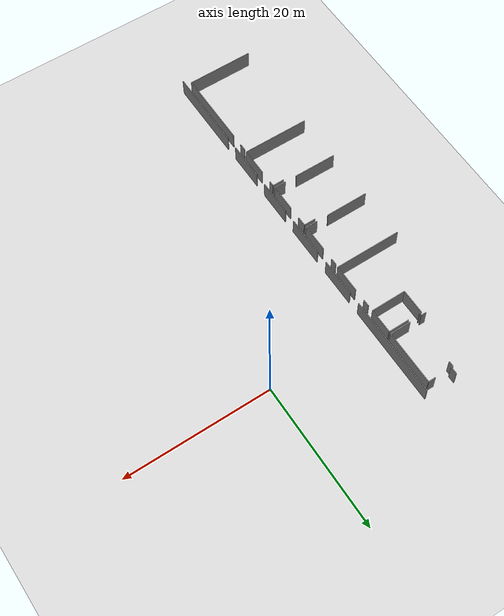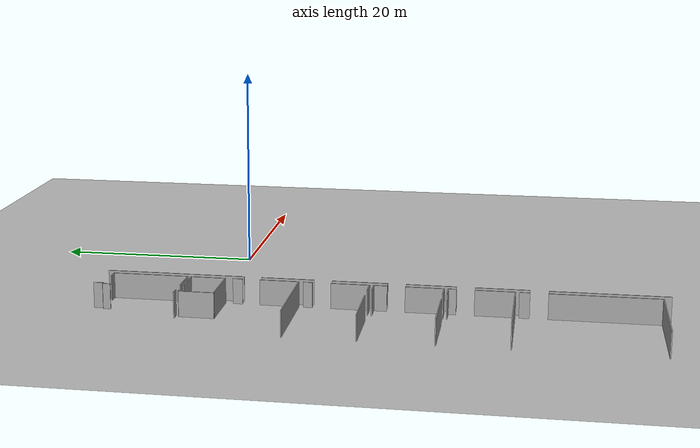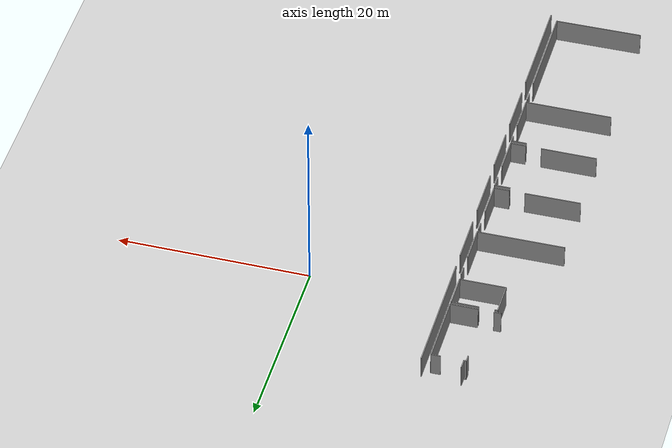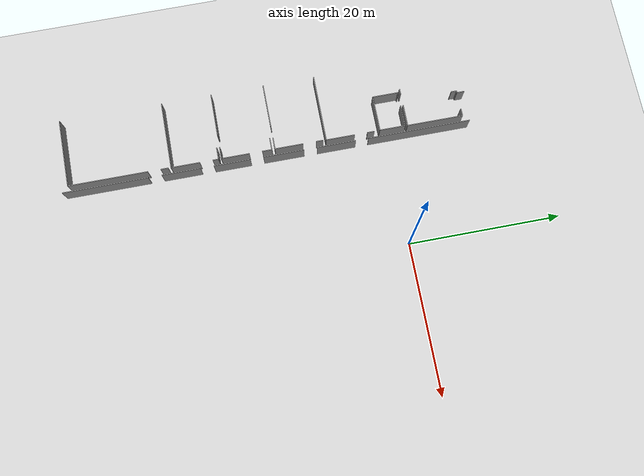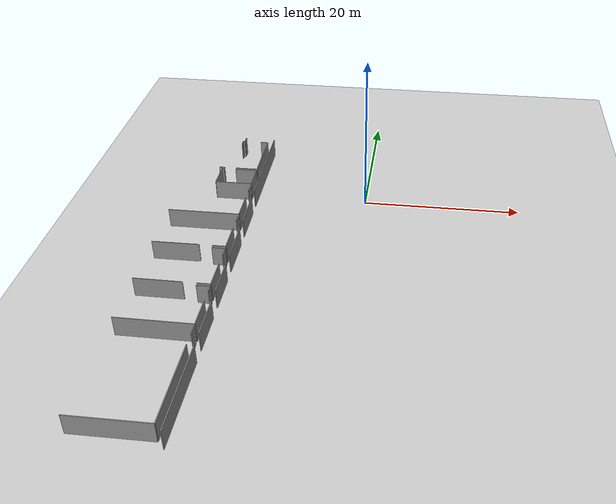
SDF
<sdf version="1.6">
 <world name="default">
  <model name="ground_plane">
   <static>1</static>
   <link name="link">
    <collision name="collision">
     <geometry><plane><normal>0 0 1</normal><size>100 100</size></plane></geometry>
     <surface><friction><ode><mu>100</mu><mu2>50</mu2></ode></friction></surface>
    </collision>
    <visual name="visual">
     <cast_shadows>0</cast_shadows>
     <geometry><plane><normal>0 0 1</normal><size>100 100</size></plane></geometry>
     <material>
      <script><uri>file://media/materials/scripts/gazebo.material</uri><name>Gazebo/Grey</name></script>
     </material>
    </visual>
   </link>
  </model>
  <model name="0510035737_A_40_1_105">
   <static>1</static>
   <link name="Wall_169">
    <collision name="Wall_169_Collision">
     <geometry><box><size>0.720409265673 0.1 2.5</size></box></geometry>
     <pose>0.360204632837 0 1.25 0 0 0</pose>
    </collision>
    <visual name="Wall_169_Visual">
     <pose>0.360204632837 0 1.25 0 0 0</pose>
     <geometry><box><size>0.720409265673 0.1 2.5</size></box></geometry>
     <material>
      <script><uri>file://media/materials/scripts/gazebo.material</uri><name>Gazebo/Grey</name></script>
      <ambient>1 1 1 1</ambient>
     </material>
    </visual>
    <pose>61.5563534683 -36.4500651393 0 0 0 1.57079632679</pose>
   </link>
   <link name="Wall_170">
    <collision name="Wall_170_Collision">
     <geometry><box><size>0.251406056369 0.1 2.5</size></box></geometry>
     <pose>0.125703028185 0 1.25 0 0 0</pose>
    </collision>
    <visual name="Wall_170_Visual">
     <pose>0.125703028185 0 1.25 0 0 0</pose>
     <geometry><box><size>0.251406056369 0.1 2.5</size></box></geometry>
     <material>
      <script><uri>file://media/materials/scripts/gazebo.material</uri><name>Gazebo/Grey</name></script>
      <ambient>1 1 1 1</ambient>
     </material>
    </visual>
    <pose>61.5563534683 -35.7296558737 0 0 0 0.0</pose>
   </link>
   <link name="Wall_171">
    <collision name="Wall_171_Collision">
     <geometry><box><size>0.98350862699 0.1 2.5</size></box></geometry>
     <pose>0.491754313495 0 1.25 0 0 0</pose>
    </collision>
    <visual name="Wall_171_Visual">
     <pose>0.491754313495 0 1.25 0 0 0</pose>
     <geometry><box><size>0.98350862699 0.1 2.5</size></box></geometry>
     <material>
      <script><uri>file://media/materials/scripts/gazebo.material</uri><name>Gazebo/Grey</name></script>
      <ambient>1 1 1 1</ambient>
     </material>
    </visual>
    <pose>61.8077595246 -35.7296558737 0 0 0 1.57079632679</pose>
   </link>
   <link name="Wall_173">
    <collision name="Wall_173_Collision">
     <geometry><box><size>0.980458199612 0.1 2.5</size></box></geometry>
     <pose>0.490229099806 0 1.25 0 0 0</pose>
    </collision>
    <visual name="Wall_173_Visual">
     <pose>0.490229099806 0 1.25 0 0 0</pose>
     <geometry><box><size>0.980458199612 0.1 2.5</size></box></geometry>
     <material>
      <script><uri>file://media/materials/scripts/gazebo.material</uri><name>Gazebo/Grey</name></script>
      <ambient>1 1 1 1</ambient>
     </material>
    </visual>
    <pose>64.1235423088 -35.7255886372 0 0 0 0.0</pose>
   </link>
   <link name="Wall_174">
    <collision name="Wall_174_Collision">
     <geometry><box><size>7.37949223094 0.1 2.5</size></box></geometry>
     <pose>3.68974611547 0 1.25 0 0 0</pose>
    </collision>
    <visual name="Wall_174_Visual">
     <pose>3.68974611547 0 1.25 0 0 0</pose>
     <geometry><box><size>7.37949223094 0.1 2.5</size></box></geometry>
     <material>
      <script><uri>file://media/materials/scripts/gazebo.material</uri><name>Gazebo/Grey</name></script>
      <ambient>1 1 1 1</ambient>
     </material>
    </visual>
    <pose>65.1040005084 -35.7255886372 0 0 0 -1.57079632679</pose>
   </link>
   <link name="Wall_175">
    <collision name="Wall_175_Collision">
     <geometry><box><size>2.85596263226 0.1 2.5</size></box></geometry>
     <pose>1.42798131613 0 1.25 0 0 0</pose>
    </collision>
    <visual name="Wall_175_Visual">
     <pose>1.42798131613 0 1.25 0 0 0</pose>
     <geometry><box><size>2.85596263226 0.1 2.5</size></box></geometry>
     <material>
      <script><uri>file://media/materials/scripts/gazebo.material</uri><name>Gazebo/Grey</name></script>
      <ambient>1 1 1 1</ambient>
     </material>
    </visual>
    <pose>65.1040005084 -43.1050808681 0 0 0 3.14159265359</pose>
   </link>
   <link name="Wall_176">
    <collision name="Wall_176_Collision">
     <geometry><box><size>0.751930348575 0.1 2.5</size></box></geometry>
     <pose>0.375965174287 0 1.25 0 0 0</pose>
    </collision>
    <visual name="Wall_176_Visual">
     <pose>0.375965174287 0 1.25 0 0 0</pose>
     <geometry><box><size>0.751930348575 0.1 2.5</size></box></geometry>
     <material>
      <script><uri>file://media/materials/scripts/gazebo.material</uri><name>Gazebo/Grey</name></script>
      <ambient>1 1 1 1</ambient>
     </material>
    </visual>
    <pose>60.6536811668 -43.1050808681 0 0 0 3.14159265359</pose>
   </link>
   <link name="Wall_188">
    <collision name="Wall_188_Collision">
     <geometry><box><size>3.38495757999 0.1 2.5</size></box></geometry>
     <pose>1.69247879 0 1.25 0 0 0</pose>
    </collision>
    <visual name="Wall_188_Visual">
     <pose>1.69247879 0 1.25 0 0 0</pose>
     <geometry><box><size>3.38495757999 0.1 2.5</size></box></geometry>
     <material>
      <script><uri>file://media/materials/scripts/gazebo.material</uri><name>Gazebo/Grey</name></script>
      <ambient>1 1 1 1</ambient>
     </material>
    </visual>
    <pose>60.3544850815 -46.8225350323 0 0 0 1.57079632679</pose>
   </link>
   <link name="Wall_189">
    <collision name="Wall_189_Collision">
     <geometry><box><size>0.282164532427 0.1 2.5</size></box></geometry>
     <pose>0.141082266213 0 1.25 0 0 0</pose>
    </collision>
    <visual name="Wall_189_Visual">
     <pose>0.141082266213 0 1.25 0 0 0</pose>
     <geometry><box><size>0.282164532427 0.1 2.5</size></box></geometry>
     <material>
      <script><uri>file://media/materials/scripts/gazebo.material</uri><name>Gazebo/Grey</name></script>
      <ambient>1 1 1 1</ambient>
     </material>
    </visual>
    <pose>60.3544850815 -43.4375774523 0 0 0 0.0</pose>
   </link>
   <link name="Wall_190">
    <collision name="Wall_190_Collision">
     <geometry><box><size>2.83842267484 0.1 2.5</size></box></geometry>
     <pose>1.41921133742 0 1.25 0 0 0</pose>
    </collision>
    <visual name="Wall_190_Visual">
     <pose>1.41921133742 0 1.25 0 0 0</pose>
     <geometry><box><size>2.83842267484 0.1 2.5</size></box></geometry>
     <material>
      <script><uri>file://media/materials/scripts/gazebo.material</uri><name>Gazebo/Grey</name></script>
      <ambient>1 1 1 1</ambient>
     </material>
    </visual>
    <pose>62.2338025484 -43.4375774523 0 0 0 0.0</pose>
   </link>
   <link name="Wall_191">
    <collision name="Wall_191_Collision">
     <geometry><box><size>3.36716342029 0.1 2.5</size></box></geometry>
     <pose>1.68358171015 0 1.25 0 0 0</pose>
    </collision>
    <visual name="Wall_191_Visual">
     <pose>1.68358171015 0 1.25 0 0 0</pose>
     <geometry><box><size>3.36716342029 0.1 2.5</size></box></geometry>
     <material>
      <script><uri>file://media/materials/scripts/gazebo.material</uri><name>Gazebo/Grey</name></script>
      <ambient>1 1 1 1</ambient>
     </material>
    </visual>
    <pose>65.0722252232 -43.4375774523 0 0 0 -1.57079632679</pose>
   </link>
   <link name="Wall_192">
    <collision name="Wall_192_Collision">
     <geometry><box><size>4.7177736992 0.1 2.5</size></box></geometry>
     <pose>2.3588868496 0 1.25 0 0 0</pose>
    </collision>
    <visual name="Wall_192_Visual">
     <pose>2.3588868496 0 1.25 0 0 0</pose>
     <geometry><box><size>4.7177736992 0.1 2.5</size></box></geometry>
     <material>
      <script><uri>file://media/materials/scripts/gazebo.material</uri><name>Gazebo/Grey</name></script>
      <ambient>1 1 1 1</ambient>
     </material>
    </visual>
    <pose>65.0722252232 -46.8047408725 0 0 0 -3.13782091653</pose>
   </link>
   <link name="Wall_213">
    <collision name="Wall_213_Collision">
     <geometry><box><size>11.2009151282 0.1 2.5</size></box></geometry>
     <pose>5.60045756411 0 1.25 0 0 0</pose>
    </collision>
    <visual name="Wall_213_Visual">
     <pose>5.60045756411 0 1.25 0 0 0</pose>
     <geometry><box><size>11.2009151282 0.1 2.5</size></box></geometry>
     <material>
      <script><uri>file://media/materials/scripts/gazebo.material</uri><name>Gazebo/Grey</name></script>
      <ambient>1 1 1 1</ambient>
     </material>
    </visual>
    <pose>65.8889771536 -88.7295605478 0 0 0 1.57079632679</pose>
   </link>
   <link name="Wall_214">
    <collision name="Wall_214_Collision">
     <geometry><box><size>5.085570843 0.1 2.5</size></box></geometry>
     <pose>2.5427854215 0 1.25 0 0 0</pose>
    </collision>
    <visual name="Wall_214_Visual">
     <pose>2.5427854215 0 1.25 0 0 0</pose>
     <geometry><box><size>5.085570843 0.1 2.5</size></box></geometry>
     <material>
      <script><uri>file://media/materials/scripts/gazebo.material</uri><name>Gazebo/Grey</name></script>
      <ambient>1 1 1 1</ambient>
     </material>
    </visual>
    <pose>65.8889771536 -75.7848177687 0 0 0 1.57079632679</pose>
   </link>
   <link name="Wall_215">
    <collision name="Wall_215_Collision">
     <geometry><box><size>4.80264370373 0.1 2.5</size></box></geometry>
     <pose>2.40132185186 0 1.25 0 0 0</pose>
    </collision>
    <visual name="Wall_215_Visual">
     <pose>2.40132185186 0 1.25 0 0 0</pose>
     <geometry><box><size>4.80264370373 0.1 2.5</size></box></geometry>
     <material>
      <script><uri>file://media/materials/scripts/gazebo.material</uri><name>Gazebo/Grey</name></script>
      <ambient>1 1 1 1</ambient>
     </material>
    </visual>
    <pose>65.8889771536 -68.9627911411 0 0 0 1.57079632679</pose>
   </link>
   <link name="Wall_216">
    <collision name="Wall_216_Collision">
     <geometry><box><size>5.36112611611 0.1 2.5</size></box></geometry>
     <pose>2.68056305805 0 1.25 0 0 0</pose>
    </collision>
    <visual name="Wall_216_Visual">
     <pose>2.68056305805 0 1.25 0 0 0</pose>
     <geometry><box><size>5.36112611611 0.1 2.5</size></box></geometry>
     <material>
      <script><uri>file://media/materials/scripts/gazebo.material</uri><name>Gazebo/Grey</name></script>
      <ambient>1 1 1 1</ambient>
     </material>
    </visual>
    <pose>65.8889771536 -62.4389437895 0 0 0 1.57079632679</pose>
   </link>
   <link name="Wall_217">
    <collision name="Wall_217_Collision">
     <geometry><box><size>5.12243017381 0.1 2.5</size></box></geometry>
     <pose>2.56121508691 0 1.25 0 0 0</pose>
    </collision>
    <visual name="Wall_217_Visual">
     <pose>2.56121508691 0 1.25 0 0 0</pose>
     <geometry><box><size>5.12243017381 0.1 2.5</size></box></geometry>
     <material>
      <script><uri>file://media/materials/scripts/gazebo.material</uri><name>Gazebo/Grey</name></script>
      <ambient>1 1 1 1</ambient>
     </material>
    </visual>
    <pose>65.8889771536 -55.3243303359 0 0 0 1.57079632679</pose>
   </link>
   <link name="Wall_218">
    <collision name="Wall_218_Collision">
     <geometry><box><size>13.5777064599 0.1 2.5</size></box></geometry>
     <pose>6.78885322996 0 1.25 0 0 0</pose>
    </collision>
    <visual name="Wall_218_Visual">
     <pose>6.78885322996 0 1.25 0 0 0</pose>
     <geometry><box><size>13.5777064599 0.1 2.5</size></box></geometry>
     <material>
      <script><uri>file://media/materials/scripts/gazebo.material</uri><name>Gazebo/Grey</name></script>
      <ambient>1 1 1 1</ambient>
     </material>
    </visual>
    <pose>65.8889771536 -48.5137428108 0 0 0 1.57079632679</pose>
   </link>
   <link name="Wall_231">
    <collision name="Wall_231_Collision">
     <geometry><box><size>0.948682914429 0.1 2.5</size></box></geometry>
     <pose>0.474341457215 0 1.25 0 0 0</pose>
    </collision>
    <visual name="Wall_231_Visual">
     <pose>0.474341457215 0 1.25 0 0 0</pose>
     <geometry><box><size>0.948682914429 0.1 2.5</size></box></geometry>
     <material>
      <script><uri>file://media/materials/scripts/gazebo.material</uri><name>Gazebo/Grey</name></script>
      <ambient>1 1 1 1</ambient>
     </material>
    </visual>
    <pose>65.1032379016 -47.5543834006 0 0 0 -1.57079632679</pose>
   </link>
   <link name="Wall_232">
    <collision name="Wall_232_Collision">
     <geometry><box><size>3.78227574592 0.1 2.5</size></box></geometry>
     <pose>1.89113787296 0 1.25 0 0 0</pose>
    </collision>
    <visual name="Wall_232_Visual">
     <pose>1.89113787296 0 1.25 0 0 0</pose>
     <geometry><box><size>3.78227574592 0.1 2.5</size></box></geometry>
     <material>
      <script><uri>file://media/materials/scripts/gazebo.material</uri><name>Gazebo/Grey</name></script>
      <ambient>1 1 1 1</ambient>
     </material>
    </visual>
    <pose>65.1032379016 -50.1919862731 0 0 0 -1.57079632679</pose>
   </link>
   <link name="Wall_233">
    <collision name="Wall_233_Collision">
     <geometry><box><size>9.01174802588 0.1 2.5</size></box></geometry>
     <pose>4.50587401294 0 1.25 0 0 0</pose>
    </collision>
    <visual name="Wall_233_Visual">
     <pose>4.50587401294 0 1.25 0 0 0</pose>
     <geometry><box><size>9.01174802588 0.1 2.5</size></box></geometry>
     <material>
      <script><uri>file://media/materials/scripts/gazebo.material</uri><name>Gazebo/Grey</name></script>
      <ambient>1 1 1 1</ambient>
     </material>
    </visual>
    <pose>65.1032379016 -53.974262019 0 0 0 -3.1393360215</pose>
   </link>
   <link name="Wall_237">
    <collision name="Wall_237_Collision">
     <geometry><box><size>0.897588255855 0.1 2.5</size></box></geometry>
     <pose>0.448794127927 0 1.25 0 0 0</pose>
    </collision>
    <visual name="Wall_237_Visual">
     <pose>0.448794127927 0 1.25 0 0 0</pose>
     <geometry><box><size>0.897588255855 0.1 2.5</size></box></geometry>
     <material>
      <script><uri>file://media/materials/scripts/gazebo.material</uri><name>Gazebo/Grey</name></script>
      <ambient>1 1 1 1</ambient>
     </material>
    </visual>
    <pose>65.0709542118 -54.4061516952 0 0 0 -1.57079632679</pose>
   </link>
   <link name="Wall_238">
    <collision name="Wall_238_Collision">
     <geometry><box><size>3.71770836643 0.1 2.5</size></box></geometry>
     <pose>1.85885418322 0 1.25 0 0 0</pose>
    </collision>
    <visual name="Wall_238_Visual">
     <pose>1.85885418322 0 1.25 0 0 0</pose>
     <geometry><box><size>3.71770836643 0.1 2.5</size></box></geometry>
     <material>
      <script><uri>file://media/materials/scripts/gazebo.material</uri><name>Gazebo/Grey</name></script>
      <ambient>1 1 1 1</ambient>
     </material>
    </visual>
    <pose>65.0709542118 -57.0584983 0 0 0 -1.57079632679</pose>
   </link>
   <link name="Wall_239">
    <collision name="Wall_239_Collision">
     <geometry><box><size>1.60223698008 0.1 2.5</size></box></geometry>
     <pose>0.801118490038 0 1.25 0 0 0</pose>
    </collision>
    <visual name="Wall_239_Visual">
     <pose>0.801118490038 0 1.25 0 0 0</pose>
     <geometry><box><size>1.60223698008 0.1 2.5</size></box></geometry>
     <material>
      <script><uri>file://media/materials/scripts/gazebo.material</uri><name>Gazebo/Grey</name></script>
      <ambient>1 1 1 1</ambient>
     </material>
    </visual>
    <pose>65.0709542118 -60.7762066665 0 0 0 3.14159265359</pose>
   </link>
   <link name="Wall_240">
    <collision name="Wall_240_Collision">
     <geometry><box><size>5.78368163985 0.1 2.5</size></box></geometry>
     <pose>2.89184081992 0 1.25 0 0 0</pose>
    </collision>
    <visual name="Wall_240_Visual">
     <pose>2.89184081992 0 1.25 0 0 0</pose>
     <geometry><box><size>5.78368163985 0.1 2.5</size></box></geometry>
     <material>
      <script><uri>file://media/materials/scripts/gazebo.material</uri><name>Gazebo/Grey</name></script>
      <ambient>1 1 1 1</ambient>
     </material>
    </visual>
    <pose>61.863175622 -60.7762066665 0 0 0 -3.13662609808</pose>
   </link>
   <link name="Wall_244">
    <collision name="Wall_244_Collision">
     <geometry><box><size>1.60554160974 0.1 2.5</size></box></geometry>
     <pose>0.802770804868 0 1.25 0 0 0</pose>
    </collision>
    <visual name="Wall_244_Visual">
     <pose>0.802770804868 0 1.25 0 0 0</pose>
     <geometry><box><size>1.60554160974 0.1 2.5</size></box></geometry>
     <material>
      <script><uri>file://media/materials/scripts/gazebo.material</uri><name>Gazebo/Grey</name></script>
      <ambient>1 1 1 1</ambient>
     </material>
    </visual>
    <pose>63.4857487846 -61.1928442058 0 0 0 0.0</pose>
   </link>
   <link name="Wall_245">
    <collision name="Wall_245_Collision">
     <geometry><box><size>1.25753868641 0.1 2.5</size></box></geometry>
     <pose>0.628769343205 0 1.25 0 0 0</pose>
    </collision>
    <visual name="Wall_245_Visual">
     <pose>0.628769343205 0 1.25 0 0 0</pose>
     <geometry><box><size>1.25753868641 0.1 2.5</size></box></geometry>
     <material>
      <script><uri>file://media/materials/scripts/gazebo.material</uri><name>Gazebo/Grey</name></script>
      <ambient>1 1 1 1</ambient>
     </material>
    </visual>
    <pose>65.0912903943 -61.1928442058 0 0 0 -1.57079632679</pose>
   </link>
   <link name="Wall_246">
    <collision name="Wall_246_Collision">
     <geometry><box><size>3.66864732611 0.1 2.5</size></box></geometry>
     <pose>1.83432366305 0 1.25 0 0 0</pose>
    </collision>
    <visual name="Wall_246_Visual">
     <pose>1.83432366305 0 1.25 0 0 0</pose>
     <geometry><box><size>3.66864732611 0.1 2.5</size></box></geometry>
     <material>
      <script><uri>file://media/materials/scripts/gazebo.material</uri><name>Gazebo/Grey</name></script>
      <ambient>1 1 1 1</ambient>
     </material>
    </visual>
    <pose>65.0912903943 -64.1621810556 0 0 0 -1.57079632679</pose>
   </link>
   <link name="Wall_247">
    <collision name="Wall_247_Collision">
     <geometry><box><size>1.58164659528 0.1 2.5</size></box></geometry>
     <pose>0.790823297639 0 1.25 0 0 0</pose>
    </collision>
    <visual name="Wall_247_Visual">
     <pose>0.790823297639 0 1.25 0 0 0</pose>
     <geometry><box><size>1.58164659528 0.1 2.5</size></box></geometry>
     <material>
      <script><uri>file://media/materials/scripts/gazebo.material</uri><name>Gazebo/Grey</name></script>
      <ambient>1 1 1 1</ambient>
     </material>
    </visual>
    <pose>65.0912903943 -67.8308283817 0 0 0 3.14159265359</pose>
   </link>
   <link name="Wall_248">
    <collision name="Wall_248_Collision">
     <geometry><box><size>5.80067840522 0.1 2.5</size></box></geometry>
     <pose>2.90033920261 0 1.25 0 0 0</pose>
    </collision>
    <visual name="Wall_248_Visual">
     <pose>2.90033920261 0 1.25 0 0 0</pose>
     <geometry><box><size>5.80067840522 0.1 2.5</size></box></geometry>
     <material>
      <script><uri>file://media/materials/scripts/gazebo.material</uri><name>Gazebo/Grey</name></script>
      <ambient>1 1 1 1</ambient>
     </material>
    </visual>
    <pose>61.8802071749 -67.8308283817 0 0 0 3.13804299498</pose>
   </link>
   <link name="Wall_252">
    <collision name="Wall_252_Collision">
     <geometry><box><size>1.58622223634 0.1 2.5</size></box></geometry>
     <pose>0.793111118172 0 1.25 0 0 0</pose>
    </collision>
    <visual name="Wall_252_Visual">
     <pose>0.793111118172 0 1.25 0 0 0</pose>
     <geometry><box><size>1.58622223634 0.1 2.5</size></box></geometry>
     <material>
      <script><uri>file://media/materials/scripts/gazebo.material</uri><name>Gazebo/Grey</name></script>
      <ambient>1 1 1 1</ambient>
     </material>
    </visual>
    <pose>63.5144736424 -68.2207746815 0 0 0 0.0</pose>
   </link>
   <link name="Wall_253">
    <collision name="Wall_253_Collision">
     <geometry><box><size>0.752692955419 0.1 2.5</size></box></geometry>
     <pose>0.37634647771 0 1.25 0 0 0</pose>
    </collision>
    <visual name="Wall_253_Visual">
     <pose>0.37634647771 0 1.25 0 0 0</pose>
     <geometry><box><size>0.752692955419 0.1 2.5</size></box></geometry>
     <material>
      <script><uri>file://media/materials/scripts/gazebo.material</uri><name>Gazebo/Grey</name></script>
      <ambient>1 1 1 1</ambient>
     </material>
    </visual>
    <pose>65.1006958787 -68.2207746815 0 0 0 -1.57079632679</pose>
   </link>
   <link name="Wall_254">
    <collision name="Wall_254_Collision">
     <geometry><box><size>3.76448158622 0.1 2.5</size></box></geometry>
     <pose>1.88224079311 0 1.25 0 0 0</pose>
    </collision>
    <visual name="Wall_254_Visual">
     <pose>1.88224079311 0 1.25 0 0 0</pose>
     <geometry><box><size>3.76448158622 0.1 2.5</size></box></geometry>
     <material>
      <script><uri>file://media/materials/scripts/gazebo.material</uri><name>Gazebo/Grey</name></script>
      <ambient>1 1 1 1</ambient>
     </material>
    </visual>
    <pose>65.1006958787 -70.683232182 0 0 0 -1.57079632679</pose>
   </link>
   <link name="Wall_255">
    <collision name="Wall_255_Collision">
     <geometry><box><size>9.01150531172 0.1 2.5</size></box></geometry>
     <pose>4.50575265586 0 1.25 0 0 0</pose>
    </collision>
    <visual name="Wall_255_Visual">
     <pose>4.50575265586 0 1.25 0 0 0</pose>
     <geometry><box><size>9.01150531172 0.1 2.5</size></box></geometry>
     <material>
      <script><uri>file://media/materials/scripts/gazebo.material</uri><name>Gazebo/Grey</name></script>
      <ambient>1 1 1 1</ambient>
     </material>
    </visual>
    <pose>65.1006958787 -74.4477137682 0 0 0 3.13882820365</pose>
   </link>
   <link name="Wall_260">
    <collision name="Wall_260_Collision">
     <geometry><box><size>0.985796447523 0.1 2.5</size></box></geometry>
     <pose>0.492898223762 0 1.25 0 0 0</pose>
    </collision>
    <visual name="Wall_260_Visual">
     <pose>0.492898223762 0 1.25 0 0 0</pose>
     <geometry><box><size>0.985796447523 0.1 2.5</size></box></geometry>
     <material>
      <script><uri>file://media/materials/scripts/gazebo.material</uri><name>Gazebo/Grey</name></script>
      <ambient>1 1 1 1</ambient>
     </material>
    </visual>
    <pose>65.0816307076 -74.8241873471 0 0 0 -1.57079632679</pose>
   </link>
   <link name="Wall_261">
    <collision name="Wall_261_Collision">
     <geometry><box><size>10.4111086397 0.1 2.5</size></box></geometry>
     <pose>5.20555431985 0 1.25 0 0 0</pose>
    </collision>
    <visual name="Wall_261_Visual">
     <pose>5.20555431985 0 1.25 0 0 0</pose>
     <geometry><box><size>10.4111086397 0.1 2.5</size></box></geometry>
     <material>
      <script><uri>file://media/materials/scripts/gazebo.material</uri><name>Gazebo/Grey</name></script>
      <ambient>1 1 1 1</ambient>
     </material>
    </visual>
    <pose>65.0816307076 -77.5095802485 0 0 0 -1.57079632679</pose>
   </link>
   <link name="Wall_262">
    <collision name="Wall_262_Collision">
     <geometry><box><size>9.0105137394 0.1 2.5</size></box></geometry>
     <pose>4.5052568697 0 1.25 0 0 0</pose>
    </collision>
    <visual name="Wall_262_Visual">
     <pose>4.5052568697 0 1.25 0 0 0</pose>
     <geometry><box><size>9.0105137394 0.1 2.5</size></box></geometry>
     <material>
      <script><uri>file://media/materials/scripts/gazebo.material</uri><name>Gazebo/Grey</name></script>
      <ambient>1 1 1 1</ambient>
     </material>
    </visual>
    <pose>65.0816307076 -87.9206888882 0 0 0 -3.13795333094</pose>
   </link>
   <pose>-80.2 45.8857980363 0 0 0 0</pose>
  </model>
 </world>
</sdf>
